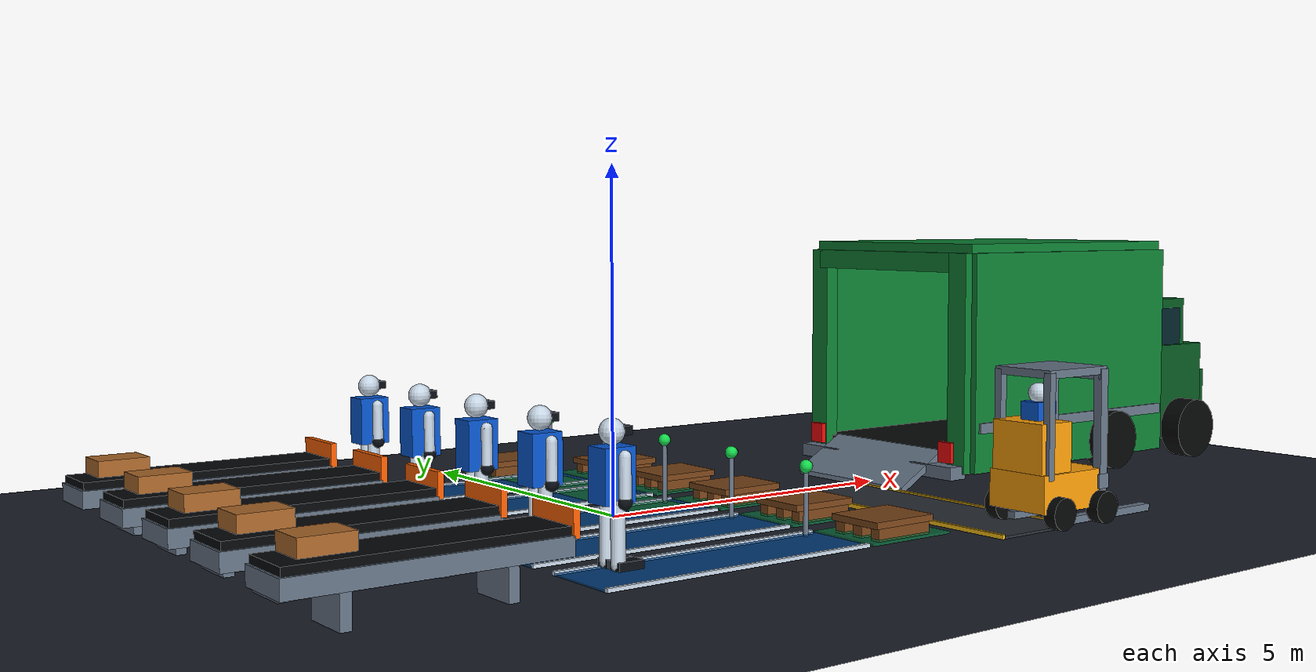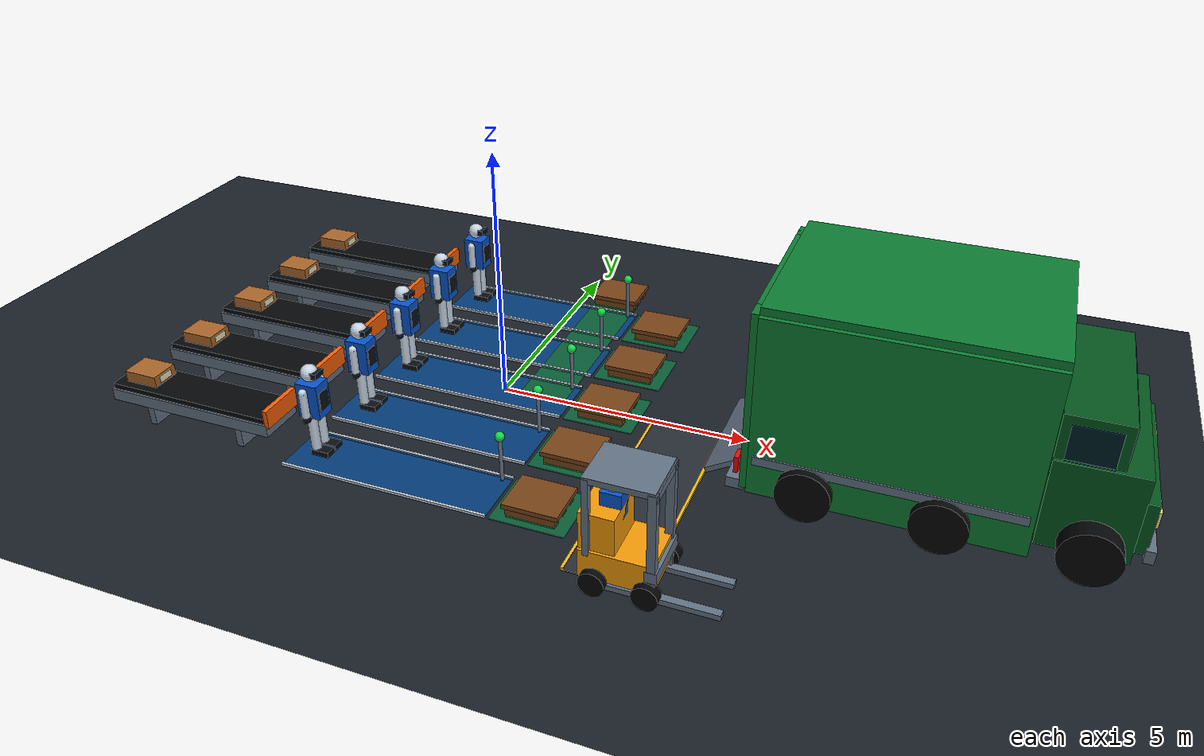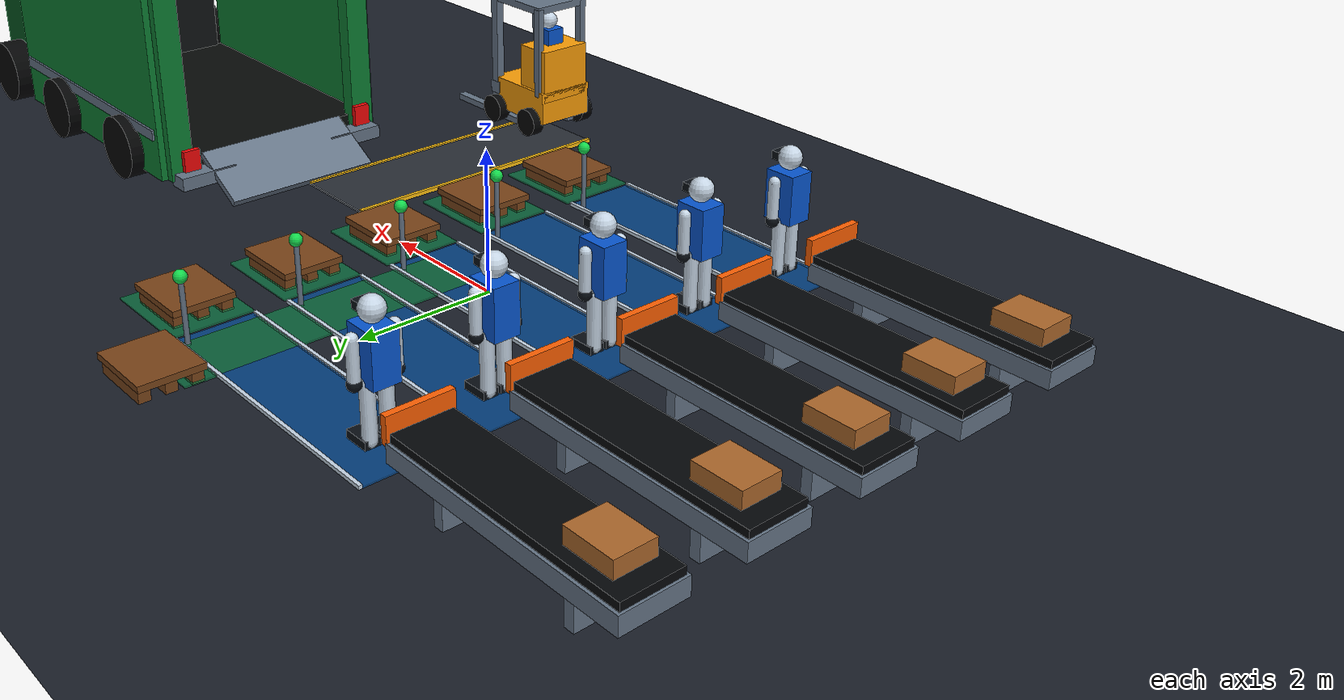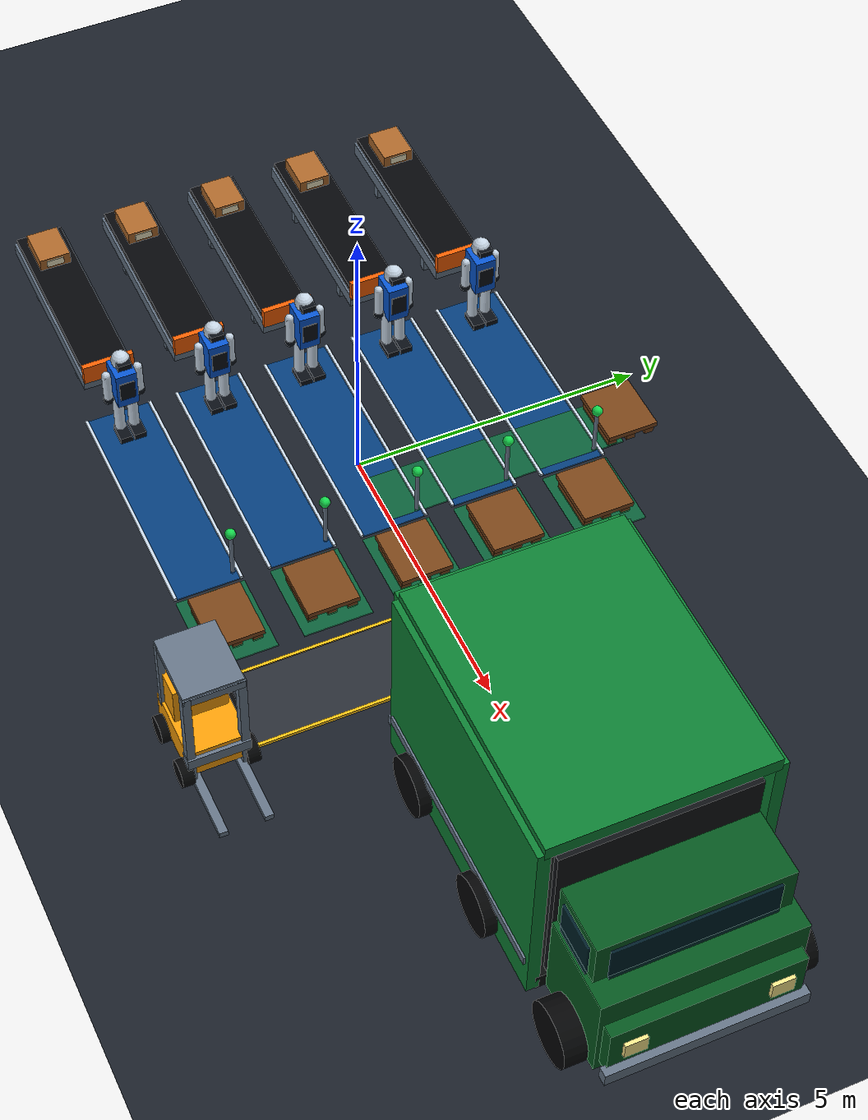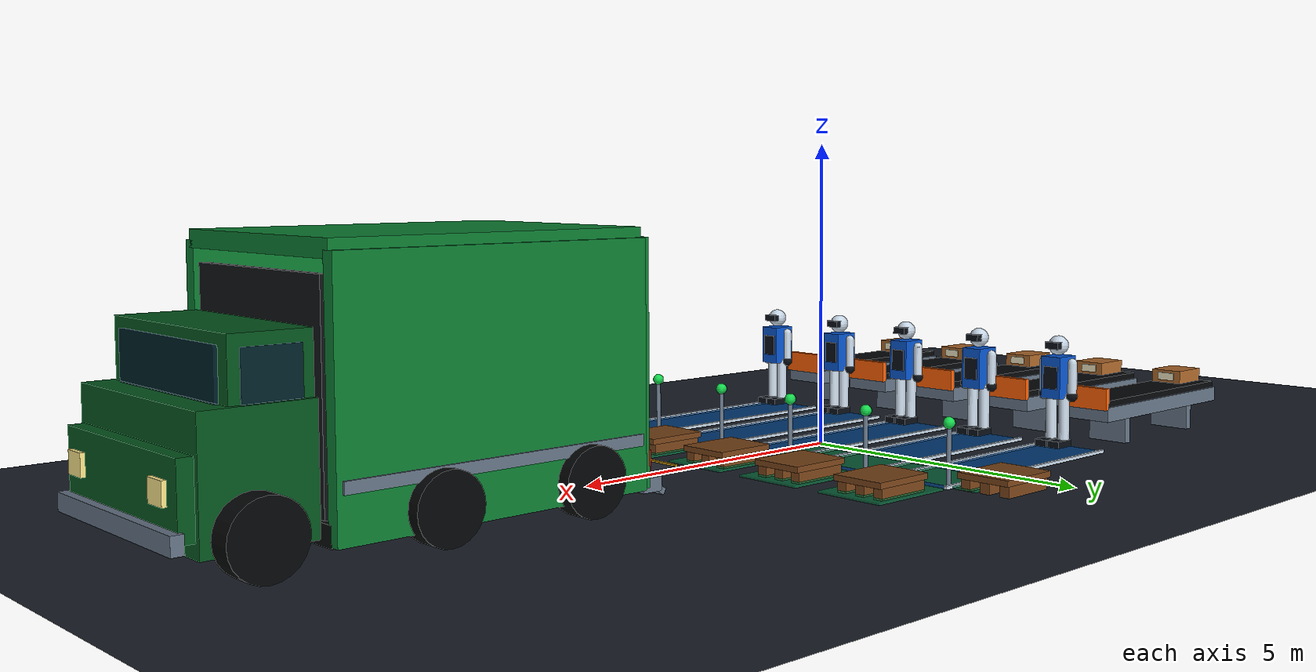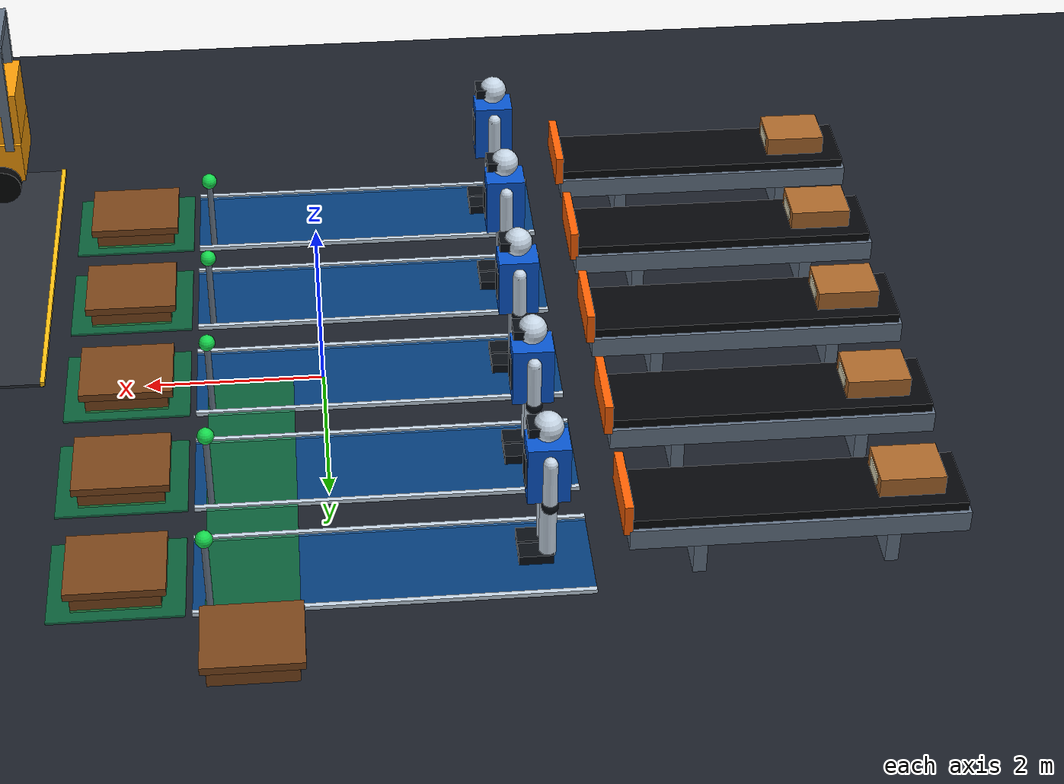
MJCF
<mujoco model="warehouse_palletizing_forklift_v4">
  <compiler angle="degree" autolimits="true"/>
  <option timestep="0.01" gravity="0 0 -9.81"/>
  <statistic center="1.0 0 1.2" extent="12.5"/>
  <visual>
    <global azimuth="128" elevation="-26"/>
    <headlight ambient="0.42 0.42 0.46" diffuse="0.86 0.86 0.86" specular="0.24 0.24 0.24"/>
    <rgba haze="0.08 0.10 0.14 1"/>
  </visual>
  <default>
    <geom contype="0" conaffinity="0"/>
    <joint damping="3" armature="0.02"/>
    <default class="limb">
      <geom type="capsule" size="0.075" mass="0.65" material="robot_shell"/>
      <joint type="hinge" axis="0 1 0" range="-75 75"/>
    </default>
  </default>
  <asset>
    <texture name="floor_tex" type="2d" builtin="checker" rgb1="0.08 0.10 0.13" rgb2="0.13 0.15 0.19" width="256" height="256"/>
    <material name="floor_mat" texture="floor_tex" texrepeat="14 10" reflectance="0.08"/>
    <material name="robot_shell" rgba="0.78 0.84 0.90 1" specular="0.50" shininess="0.42"/>
    <material name="robot_blue" rgba="0.03 0.34 0.82 1" specular="0.45" shininess="0.35"/>
    <material name="robot_dark" rgba="0.035 0.055 0.08 1"/>
    <material name="belt" rgba="0.018 0.025 0.035 1"/>
    <material name="steel" rgba="0.40 0.46 0.53 1" specular="0.48" shininess="0.42"/>
    <material name="safety_orange" rgba="1.00 0.38 0.01 1"/>
    <material name="safety_yellow" rgba="1.00 0.76 0.07 1"/>
    <material name="lane_blue" rgba="0.02 0.34 0.68 0.68"/>
    <material name="pallet" rgba="0.48 0.27 0.10 1"/>
    <material name="truck_green" rgba="0.05 0.50 0.20 1" specular="0.40" shininess="0.30"/>
    <material name="truck_cab_green" rgba="0.02 0.34 0.12 1" specular="0.48" shininess="0.38"/>
    <material name="truck_dark" rgba="0.025 0.035 0.03 1"/>
    <material name="truck_interior" rgba="0.055 0.065 0.075 1"/>
    <material name="aisle_dark" rgba="0.16 0.18 0.21 1"/>
    <material name="tire" rgba="0.015 0.018 0.022 1"/>
    <material name="forklift_yellow" rgba="0.98 0.62 0.03 1" specular="0.38" shininess="0.25"/>
    <material name="window" rgba="0.05 0.15 0.22 0.86"/>
    <material name="zone_green" rgba="0.05 0.55 0.30 0.65"/>
  </asset>
  <worldbody>
    <light name="key" pos="1 -5 11" dir="-0.1 0.2 -1" diffuse="0.90 0.90 0.90"/>
    <light name="truck_fill" pos="8 2 8" dir="-0.2 -0.1 -1" diffuse="0.48 0.58 0.50"/>
    <geom name="floor" type="plane" size="13 7.5 0.1" material="floor_mat" contype="1" conaffinity="1"/>

    <!-- Green truck with an open rear, cargo bay, cab and visible wheels. -->
    <geom name="truck_floor" type="box" pos="7.75 0 0.42" size="2.30 1.72 0.14" material="truck_dark"/>
    <geom name="truck_left_wall" type="box" pos="7.75 -1.76 2.00" size="2.30 0.10 1.70" material="truck_green"/>
    <geom name="truck_right_wall" type="box" pos="7.75 1.76 2.00" size="2.30 0.10 1.70" material="truck_green"/>
    <geom name="truck_roof" type="box" pos="7.75 0 3.72" size="2.30 1.76 0.12" material="truck_green"/>
    <geom name="truck_interior_front" type="box" pos="9.98 0 2.00" size="0.05 1.54 1.42" material="truck_interior"/>
    <geom name="truck_side_rail_left" type="box" pos="7.75 -1.87 1.00" size="2.22 0.025 0.08" material="steel"/>
    <geom name="truck_side_rail_right" type="box" pos="7.75 1.87 1.00" size="2.22 0.025 0.08" material="steel"/>
    <geom name="truck_rear_left" type="box" pos="5.43 -1.58 2.00" size="0.12 0.18 1.70" material="truck_green"/>
    <geom name="truck_rear_right" type="box" pos="5.43 1.58 2.00" size="0.12 0.18 1.70" material="truck_green"/>
    <geom name="truck_rear_header" type="box" pos="5.43 0 3.55" size="0.12 1.58 0.15" material="truck_green"/>
    <geom name="truck_bumper_left" type="box" pos="5.22 -1.28 0.32" size="0.16 0.44 0.10" material="steel"/>
    <geom name="truck_bumper_right" type="box" pos="5.22 1.28 0.32" size="0.16 0.44 0.10" material="steel"/>
    <geom name="truck_loading_ramp" type="box" pos="4.99 0 0.305" size="0.51 1.20 0.05" euler="0 -30 0" material="steel"/>
    <geom name="truck_taillight_left" type="box" pos="5.20 -1.48 0.62" size="0.04 0.13 0.16" rgba="0.95 0.03 0.03 1"/>
    <geom name="truck_taillight_right" type="box" pos="5.20 1.48 0.62" size="0.04 0.13 0.16" rgba="0.95 0.03 0.03 1"/>
    <geom name="truck_cab_lower" type="box" pos="10.82 0 1.20" size="0.72 1.58 0.82" material="truck_cab_green"/>
    <geom name="truck_cab_upper" type="box" pos="10.62 0 2.22" size="0.52 1.50 0.60" material="truck_cab_green"/>
    <geom name="truck_hood" type="box" pos="11.42 0 1.05" size="0.32 1.50 0.48" material="truck_cab_green"/>
    <geom name="truck_windshield" type="box" pos="11.15 0 2.28" size="0.035 1.28 0.40" material="window"/>
    <geom name="truck_side_window_left" type="box" pos="10.62 -1.515 2.28" size="0.37 0.025 0.38" material="window"/>
    <geom name="truck_side_window_right" type="box" pos="10.62 1.515 2.28" size="0.37 0.025 0.38" material="window"/>
    <geom name="truck_front_bumper" type="box" pos="11.78 0 0.60" size="0.08 1.58 0.12" material="steel"/>
    <geom name="truck_headlight_left" type="box" pos="11.79 -1.12 1.12" size="0.03 0.18 0.15" rgba="1.00 0.92 0.55 1"/>
    <geom name="truck_headlight_right" type="box" pos="11.79 1.12 1.12" size="0.03 0.18 0.15" rgba="1.00 0.92 0.55 1"/>
    <geom type="cylinder" pos="6.45 -1.88 0.58" size="0.48 0.18" euler="90 0 0" material="tire"/>
    <geom type="cylinder" pos="6.45 1.88 0.58" size="0.48 0.18" euler="90 0 0" material="tire"/>
    <geom type="cylinder" pos="8.65 -1.88 0.58" size="0.48 0.18" euler="90 0 0" material="tire"/>
    <geom type="cylinder" pos="8.65 1.88 0.58" size="0.48 0.18" euler="90 0 0" material="tire"/>
    <geom type="cylinder" pos="10.92 -1.78 0.58" size="0.50 0.18" euler="90 0 0" material="tire"/>
    <geom type="cylinder" pos="10.92 1.78 0.58" size="0.50 0.18" euler="90 0 0" material="tire"/>

    <!-- Forklift service aisle and pallet-replenishment cross aisle. -->
    <geom name="forklift_aisle" type="box" pos="3.85 -2.30 0.018" size="0.70 2.20 0.018" material="aisle_dark"/>
    <geom name="forklift_aisle_left_edge" type="box" pos="3.17 -2.30 0.03" size="0.025 2.20 0.03" material="safety_yellow"/>
    <geom name="forklift_aisle_right_edge" type="box" pos="4.53 -2.30 0.03" size="0.025 2.20 0.03" material="safety_yellow"/>
    <geom name="pallet_cross_aisle" type="box" pos="0.82 2.10 0.014" size="0.48 2.10 0.014" material="zone_green"/>

    <!-- Lane 1: conveyor, protected travel path, pallet station and status tower. -->
    <geom name="belt_frame_01" type="box" pos="-4.75 -3.20 0.56" size="1.75 0.44 0.12" material="steel"/>
    <geom name="belt_01" type="box" pos="-4.75 -3.20 0.73" size="1.72 0.40 0.055" material="belt"/>
    <geom name="belt_stop_01" type="box" pos="-2.98 -3.20 0.82" size="0.045 0.44 0.18" material="safety_orange"/>
    <geom type="box" pos="-5.75 -3.20 0.28" size="0.07 0.35 0.28" material="steel"/>
    <geom type="box" pos="-3.75 -3.20 0.28" size="0.07 0.35 0.28" material="steel"/>
    <geom name="lane_zone_01" type="box" pos="-0.62 -3.20 0.012" size="2.05 0.54 0.012" material="lane_blue"/>
    <geom name="lane_left_01" type="box" pos="-0.62 -3.76 0.025" size="2.05 0.025 0.025" material="robot_shell"/>
    <geom name="lane_right_01" type="box" pos="-0.62 -2.64 0.025" size="2.05 0.025 0.025" material="robot_shell"/>
    <geom name="pallet_zone_01" type="box" pos="2.20 -3.20 0.014" size="0.70 0.58 0.014" material="zone_green"/>
    <geom type="cylinder" pos="1.25 -2.72 0.45" size="0.035 0.45" material="steel"/>
    <geom name="status_01" type="sphere" pos="1.25 -2.72 0.94" size="0.09" rgba="0.08 0.85 0.30 1"/>

    <!-- Lane 2: conveyor, protected travel path, pallet station and status tower. -->
    <geom name="belt_frame_02" type="box" pos="-4.75 -1.60 0.56" size="1.75 0.44 0.12" material="steel"/>
    <geom name="belt_02" type="box" pos="-4.75 -1.60 0.73" size="1.72 0.40 0.055" material="belt"/>
    <geom name="belt_stop_02" type="box" pos="-2.98 -1.60 0.82" size="0.045 0.44 0.18" material="safety_orange"/>
    <geom type="box" pos="-5.75 -1.60 0.28" size="0.07 0.35 0.28" material="steel"/>
    <geom type="box" pos="-3.75 -1.60 0.28" size="0.07 0.35 0.28" material="steel"/>
    <geom name="lane_zone_02" type="box" pos="-0.62 -1.60 0.012" size="2.05 0.54 0.012" material="lane_blue"/>
    <geom name="lane_left_02" type="box" pos="-0.62 -2.16 0.025" size="2.05 0.025 0.025" material="robot_shell"/>
    <geom name="lane_right_02" type="box" pos="-0.62 -1.04 0.025" size="2.05 0.025 0.025" material="robot_shell"/>
    <geom name="pallet_zone_02" type="box" pos="2.20 -1.60 0.014" size="0.70 0.58 0.014" material="zone_green"/>
    <geom type="cylinder" pos="1.25 -1.12 0.45" size="0.035 0.45" material="steel"/>
    <geom name="status_02" type="sphere" pos="1.25 -1.12 0.94" size="0.09" rgba="0.08 0.85 0.30 1"/>

    <!-- Lane 3: conveyor, protected travel path, pallet station and status tower. -->
    <geom name="belt_frame_03" type="box" pos="-4.75 0.00 0.56" size="1.75 0.44 0.12" material="steel"/>
    <geom name="belt_03" type="box" pos="-4.75 0.00 0.73" size="1.72 0.40 0.055" material="belt"/>
    <geom name="belt_stop_03" type="box" pos="-2.98 0.00 0.82" size="0.045 0.44 0.18" material="safety_orange"/>
    <geom type="box" pos="-5.75 0.00 0.28" size="0.07 0.35 0.28" material="steel"/>
    <geom type="box" pos="-3.75 0.00 0.28" size="0.07 0.35 0.28" material="steel"/>
    <geom name="lane_zone_03" type="box" pos="-0.62 0.00 0.012" size="2.05 0.54 0.012" material="lane_blue"/>
    <geom name="lane_left_03" type="box" pos="-0.62 -0.56 0.025" size="2.05 0.025 0.025" material="robot_shell"/>
    <geom name="lane_right_03" type="box" pos="-0.62 0.56 0.025" size="2.05 0.025 0.025" material="robot_shell"/>
    <geom name="pallet_zone_03" type="box" pos="2.20 0.00 0.014" size="0.70 0.58 0.014" material="zone_green"/>
    <geom type="cylinder" pos="1.25 0.48 0.45" size="0.035 0.45" material="steel"/>
    <geom name="status_03" type="sphere" pos="1.25 0.48 0.94" size="0.09" rgba="0.08 0.85 0.30 1"/>

    <!-- Lane 4: conveyor, protected travel path, pallet station and status tower. -->
    <geom name="belt_frame_04" type="box" pos="-4.75 1.60 0.56" size="1.75 0.44 0.12" material="steel"/>
    <geom name="belt_04" type="box" pos="-4.75 1.60 0.73" size="1.72 0.40 0.055" material="belt"/>
    <geom name="belt_stop_04" type="box" pos="-2.98 1.60 0.82" size="0.045 0.44 0.18" material="safety_orange"/>
    <geom type="box" pos="-5.75 1.60 0.28" size="0.07 0.35 0.28" material="steel"/>
    <geom type="box" pos="-3.75 1.60 0.28" size="0.07 0.35 0.28" material="steel"/>
    <geom name="lane_zone_04" type="box" pos="-0.62 1.60 0.012" size="2.05 0.54 0.012" material="lane_blue"/>
    <geom name="lane_left_04" type="box" pos="-0.62 1.04 0.025" size="2.05 0.025 0.025" material="robot_shell"/>
    <geom name="lane_right_04" type="box" pos="-0.62 2.16 0.025" size="2.05 0.025 0.025" material="robot_shell"/>
    <geom name="pallet_zone_04" type="box" pos="2.20 1.60 0.014" size="0.70 0.58 0.014" material="zone_green"/>
    <geom type="cylinder" pos="1.25 2.08 0.45" size="0.035 0.45" material="steel"/>
    <geom name="status_04" type="sphere" pos="1.25 2.08 0.94" size="0.09" rgba="0.08 0.85 0.30 1"/>

    <!-- Lane 5: conveyor, protected travel path, pallet station and status tower. -->
    <geom name="belt_frame_05" type="box" pos="-4.75 3.20 0.56" size="1.75 0.44 0.12" material="steel"/>
    <geom name="belt_05" type="box" pos="-4.75 3.20 0.73" size="1.72 0.40 0.055" material="belt"/>
    <geom name="belt_stop_05" type="box" pos="-2.98 3.20 0.82" size="0.045 0.44 0.18" material="safety_orange"/>
    <geom type="box" pos="-5.75 3.20 0.28" size="0.07 0.35 0.28" material="steel"/>
    <geom type="box" pos="-3.75 3.20 0.28" size="0.07 0.35 0.28" material="steel"/>
    <geom name="lane_zone_05" type="box" pos="-0.62 3.20 0.012" size="2.05 0.54 0.012" material="lane_blue"/>
    <geom name="lane_left_05" type="box" pos="-0.62 2.64 0.025" size="2.05 0.025 0.025" material="robot_shell"/>
    <geom name="lane_right_05" type="box" pos="-0.62 3.76 0.025" size="2.05 0.025 0.025" material="robot_shell"/>
    <geom name="pallet_zone_05" type="box" pos="2.20 3.20 0.014" size="0.70 0.58 0.014" material="zone_green"/>
    <geom type="cylinder" pos="1.25 3.68 0.45" size="0.035 0.45" material="steel"/>
    <geom name="status_05" type="sphere" pos="1.25 3.68 0.94" size="0.09" rgba="0.08 0.85 0.30 1"/>

    <!-- Five articulated worker robots. -->
    <body name="humanoid_01" mocap="true" pos="-2.20 -3.20 0">
      <geom type="box" pos="0 0 1.24" size="0.22 0.18 0.34" material="robot_blue"/>
      <geom type="box" pos="0.20 0 1.24" size="0.035 0.13 0.18" material="robot_dark"/>
      <geom type="sphere" pos="0 0 1.75" size="0.16" material="robot_shell"/>
      <geom type="box" pos="0.13 0 1.76" size="0.08 0.12 0.055" material="robot_dark"/>
      <body pos="0 -0.27 1.48" childclass="limb"><joint name="h01_l_shoulder"/><geom fromto="0 0 0 0 0 -0.52"/><geom type="sphere" pos="0 0 -0.54" size="0.09" material="robot_dark"/></body>
      <body pos="0 0.27 1.48" childclass="limb"><joint name="h01_r_shoulder"/><geom fromto="0 0 0 0 0 -0.52"/><geom type="sphere" pos="0 0 -0.54" size="0.09" material="robot_dark"/></body>
      <body pos="0 -0.12 0.91" childclass="limb"><joint name="h01_l_hip"/><geom size="0.09" fromto="0 0 0 0 0 -0.72"/><geom type="box" pos="0.12 0 -0.74" size="0.18 0.105 0.055" material="robot_dark"/></body>
      <body pos="0 0.12 0.91" childclass="limb"><joint name="h01_r_hip"/><geom size="0.09" fromto="0 0 0 0 0 -0.72"/><geom type="box" pos="0.12 0 -0.74" size="0.18 0.105 0.055" material="robot_dark"/></body>
    </body>
    <body name="humanoid_02" mocap="true" pos="-2.20 -1.60 0">
      <geom type="box" pos="0 0 1.24" size="0.22 0.18 0.34" material="robot_blue"/>
      <geom type="box" pos="0.20 0 1.24" size="0.035 0.13 0.18" material="robot_dark"/>
      <geom type="sphere" pos="0 0 1.75" size="0.16" material="robot_shell"/>
      <geom type="box" pos="0.13 0 1.76" size="0.08 0.12 0.055" material="robot_dark"/>
      <body pos="0 -0.27 1.48" childclass="limb"><joint name="h02_l_shoulder"/><geom fromto="0 0 0 0 0 -0.52"/><geom type="sphere" pos="0 0 -0.54" size="0.09" material="robot_dark"/></body>
      <body pos="0 0.27 1.48" childclass="limb"><joint name="h02_r_shoulder"/><geom fromto="0 0 0 0 0 -0.52"/><geom type="sphere" pos="0 0 -0.54" size="0.09" material="robot_dark"/></body>
      <body pos="0 -0.12 0.91" childclass="limb"><joint name="h02_l_hip"/><geom size="0.09" fromto="0 0 0 0 0 -0.72"/><geom type="box" pos="0.12 0 -0.74" size="0.18 0.105 0.055" material="robot_dark"/></body>
      <body pos="0 0.12 0.91" childclass="limb"><joint name="h02_r_hip"/><geom size="0.09" fromto="0 0 0 0 0 -0.72"/><geom type="box" pos="0.12 0 -0.74" size="0.18 0.105 0.055" material="robot_dark"/></body>
    </body>
    <body name="humanoid_03" mocap="true" pos="-2.20 0.00 0">
      <geom type="box" pos="0 0 1.24" size="0.22 0.18 0.34" material="robot_blue"/>
      <geom type="box" pos="0.20 0 1.24" size="0.035 0.13 0.18" material="robot_dark"/>
      <geom type="sphere" pos="0 0 1.75" size="0.16" material="robot_shell"/>
      <geom type="box" pos="0.13 0 1.76" size="0.08 0.12 0.055" material="robot_dark"/>
      <body pos="0 -0.27 1.48" childclass="limb"><joint name="h03_l_shoulder"/><geom fromto="0 0 0 0 0 -0.52"/><geom type="sphere" pos="0 0 -0.54" size="0.09" material="robot_dark"/></body>
      <body pos="0 0.27 1.48" childclass="limb"><joint name="h03_r_shoulder"/><geom fromto="0 0 0 0 0 -0.52"/><geom type="sphere" pos="0 0 -0.54" size="0.09" material="robot_dark"/></body>
      <body pos="0 -0.12 0.91" childclass="limb"><joint name="h03_l_hip"/><geom size="0.09" fromto="0 0 0 0 0 -0.72"/><geom type="box" pos="0.12 0 -0.74" size="0.18 0.105 0.055" material="robot_dark"/></body>
      <body pos="0 0.12 0.91" childclass="limb"><joint name="h03_r_hip"/><geom size="0.09" fromto="0 0 0 0 0 -0.72"/><geom type="box" pos="0.12 0 -0.74" size="0.18 0.105 0.055" material="robot_dark"/></body>
    </body>
    <body name="humanoid_04" mocap="true" pos="-2.20 1.60 0">
      <geom type="box" pos="0 0 1.24" size="0.22 0.18 0.34" material="robot_blue"/>
      <geom type="box" pos="0.20 0 1.24" size="0.035 0.13 0.18" material="robot_dark"/>
      <geom type="sphere" pos="0 0 1.75" size="0.16" material="robot_shell"/>
      <geom type="box" pos="0.13 0 1.76" size="0.08 0.12 0.055" material="robot_dark"/>
      <body pos="0 -0.27 1.48" childclass="limb"><joint name="h04_l_shoulder"/><geom fromto="0 0 0 0 0 -0.52"/><geom type="sphere" pos="0 0 -0.54" size="0.09" material="robot_dark"/></body>
      <body pos="0 0.27 1.48" childclass="limb"><joint name="h04_r_shoulder"/><geom fromto="0 0 0 0 0 -0.52"/><geom type="sphere" pos="0 0 -0.54" size="0.09" material="robot_dark"/></body>
      <body pos="0 -0.12 0.91" childclass="limb"><joint name="h04_l_hip"/><geom size="0.09" fromto="0 0 0 0 0 -0.72"/><geom type="box" pos="0.12 0 -0.74" size="0.18 0.105 0.055" material="robot_dark"/></body>
      <body pos="0 0.12 0.91" childclass="limb"><joint name="h04_r_hip"/><geom size="0.09" fromto="0 0 0 0 0 -0.72"/><geom type="box" pos="0.12 0 -0.74" size="0.18 0.105 0.055" material="robot_dark"/></body>
    </body>
    <body name="humanoid_05" mocap="true" pos="-2.20 3.20 0">
      <geom type="box" pos="0 0 1.24" size="0.22 0.18 0.34" material="robot_blue"/>
      <geom type="box" pos="0.20 0 1.24" size="0.035 0.13 0.18" material="robot_dark"/>
      <geom type="sphere" pos="0 0 1.75" size="0.16" material="robot_shell"/>
      <geom type="box" pos="0.13 0 1.76" size="0.08 0.12 0.055" material="robot_dark"/>
      <body pos="0 -0.27 1.48" childclass="limb"><joint name="h05_l_shoulder"/><geom fromto="0 0 0 0 0 -0.52"/><geom type="sphere" pos="0 0 -0.54" size="0.09" material="robot_dark"/></body>
      <body pos="0 0.27 1.48" childclass="limb"><joint name="h05_r_shoulder"/><geom fromto="0 0 0 0 0 -0.52"/><geom type="sphere" pos="0 0 -0.54" size="0.09" material="robot_dark"/></body>
      <body pos="0 -0.12 0.91" childclass="limb"><joint name="h05_l_hip"/><geom size="0.09" fromto="0 0 0 0 0 -0.72"/><geom type="box" pos="0.12 0 -0.74" size="0.18 0.105 0.055" material="robot_dark"/></body>
      <body pos="0 0.12 0.91" childclass="limb"><joint name="h05_r_hip"/><geom size="0.09" fromto="0 0 0 0 0 -0.72"/><geom type="box" pos="0.12 0 -0.74" size="0.18 0.105 0.055" material="robot_dark"/></body>
    </body>

    <!-- Active cartons arriving on the five conveyor belts. -->
    <body name="carton_01" mocap="true" pos="-5.90 -3.20 0.92">
      <geom name="active_box_01" type="box" size="0.34 0.27 0.11" rgba="0.68 0.41 0.17 1"/>
      <geom name="active_label_01" type="box" pos="0.345 0 0" size="0.008 0.15 0.065" rgba="0.94 0.91 0.77 1"/>
    </body>
    <body name="carton_02" mocap="true" pos="-5.90 -1.60 0.92">
      <geom name="active_box_02" type="box" size="0.34 0.27 0.11" rgba="0.68 0.41 0.17 1"/>
      <geom name="active_label_02" type="box" pos="0.345 0 0" size="0.008 0.15 0.065" rgba="0.94 0.91 0.77 1"/>
    </body>
    <body name="carton_03" mocap="true" pos="-5.90 0.00 0.92">
      <geom name="active_box_03" type="box" size="0.34 0.27 0.11" rgba="0.68 0.41 0.17 1"/>
      <geom name="active_label_03" type="box" pos="0.345 0 0" size="0.008 0.15 0.065" rgba="0.94 0.91 0.77 1"/>
    </body>
    <body name="carton_04" mocap="true" pos="-5.90 1.60 0.92">
      <geom name="active_box_04" type="box" size="0.34 0.27 0.11" rgba="0.68 0.41 0.17 1"/>
      <geom name="active_label_04" type="box" pos="0.345 0 0" size="0.008 0.15 0.065" rgba="0.94 0.91 0.77 1"/>
    </body>
    <body name="carton_05" mocap="true" pos="-5.90 3.20 0.92">
      <geom name="active_box_05" type="box" size="0.34 0.27 0.11" rgba="0.68 0.41 0.17 1"/>
      <geom name="active_label_05" type="box" pos="0.345 0 0" size="0.008 0.15 0.065" rgba="0.94 0.91 0.77 1"/>
    </body>

    <!-- Five floor pallets. The center pallet is serviced by the forklift. -->
    <body name="pallet_01" mocap="true" pos="2.20 -3.20 0">
      <geom type="box" pos="0 -0.34 0.10" size="0.46 0.08 0.10" material="pallet"/>
      <geom type="box" pos="0 0 0.10" size="0.46 0.08 0.10" material="pallet"/>
      <geom type="box" pos="0 0.34 0.10" size="0.46 0.08 0.10" material="pallet"/>
      <geom type="box" pos="0 0 0.22" size="0.52 0.44 0.045" material="pallet"/>
    </body>
    <body name="stack_lane_01" mocap="true" pos="2.20 -3.20 0">
      <geom name="stack_01_01" type="box" pos="-0.03 0 0.39" size="0.34 0.27 0.11" rgba="0.68 0.41 0.17 0"/>
      <geom name="stack_01_02" type="box" pos="0.03 0 0.62" size="0.34 0.27 0.11" rgba="0.68 0.41 0.17 0"/>
      <geom name="stack_01_03" type="box" pos="-0.03 0 0.85" size="0.34 0.27 0.11" rgba="0.68 0.41 0.17 0"/>
      <geom name="stack_01_04" type="box" pos="0.03 0 1.08" size="0.34 0.27 0.11" rgba="0.68 0.41 0.17 0"/>
      <geom name="stack_01_05" type="box" pos="-0.03 0 1.31" size="0.34 0.27 0.11" rgba="0.68 0.41 0.17 0"/>
      <geom name="stack_01_06" type="box" pos="0.03 0 1.54" size="0.34 0.27 0.11" rgba="0.68 0.41 0.17 0"/>
      <geom name="stack_01_07" type="box" pos="-0.03 0 1.77" size="0.34 0.27 0.11" rgba="0.68 0.41 0.17 0"/>
    </body>
    <body name="pallet_02" mocap="true" pos="2.20 -1.60 0">
      <geom type="box" pos="0 -0.34 0.10" size="0.46 0.08 0.10" material="pallet"/>
      <geom type="box" pos="0 0 0.10" size="0.46 0.08 0.10" material="pallet"/>
      <geom type="box" pos="0 0.34 0.10" size="0.46 0.08 0.10" material="pallet"/>
      <geom type="box" pos="0 0 0.22" size="0.52 0.44 0.045" material="pallet"/>
    </body>
    <body name="stack_lane_02" mocap="true" pos="2.20 -1.60 0">
      <geom name="stack_02_01" type="box" pos="-0.03 0 0.39" size="0.34 0.27 0.11" rgba="0.68 0.41 0.17 0"/>
      <geom name="stack_02_02" type="box" pos="0.03 0 0.62" size="0.34 0.27 0.11" rgba="0.68 0.41 0.17 0"/>
      <geom name="stack_02_03" type="box" pos="-0.03 0 0.85" size="0.34 0.27 0.11" rgba="0.68 0.41 0.17 0"/>
      <geom name="stack_02_04" type="box" pos="0.03 0 1.08" size="0.34 0.27 0.11" rgba="0.68 0.41 0.17 0"/>
      <geom name="stack_02_05" type="box" pos="-0.03 0 1.31" size="0.34 0.27 0.11" rgba="0.68 0.41 0.17 0"/>
      <geom name="stack_02_06" type="box" pos="0.03 0 1.54" size="0.34 0.27 0.11" rgba="0.68 0.41 0.17 0"/>
      <geom name="stack_02_07" type="box" pos="-0.03 0 1.77" size="0.34 0.27 0.11" rgba="0.68 0.41 0.17 0"/>
    </body>
    <body name="pallet_03" mocap="true" pos="2.20 0.00 0">
      <geom type="box" pos="0 -0.34 0.10" size="0.46 0.08 0.10" material="pallet"/>
      <geom type="box" pos="0 0 0.10" size="0.46 0.08 0.10" material="pallet"/>
      <geom type="box" pos="0 0.34 0.10" size="0.46 0.08 0.10" material="pallet"/>
      <geom type="box" pos="0 0 0.22" size="0.52 0.44 0.045" material="pallet"/>
    </body>
    <body name="stack_lane_03" mocap="true" pos="2.20 0.00 0">
      <geom name="stack_03_01" type="box" pos="-0.03 0 0.39" size="0.34 0.27 0.11" rgba="0.68 0.41 0.17 0"/>
      <geom name="stack_03_02" type="box" pos="0.03 0 0.62" size="0.34 0.27 0.11" rgba="0.68 0.41 0.17 0"/>
      <geom name="stack_03_03" type="box" pos="-0.03 0 0.85" size="0.34 0.27 0.11" rgba="0.68 0.41 0.17 0"/>
      <geom name="stack_03_04" type="box" pos="0.03 0 1.08" size="0.34 0.27 0.11" rgba="0.68 0.41 0.17 0"/>
      <geom name="stack_03_05" type="box" pos="-0.03 0 1.31" size="0.34 0.27 0.11" rgba="0.68 0.41 0.17 0"/>
      <geom name="stack_03_06" type="box" pos="0.03 0 1.54" size="0.34 0.27 0.11" rgba="0.68 0.41 0.17 0"/>
      <geom name="stack_03_07" type="box" pos="-0.03 0 1.77" size="0.34 0.27 0.11" rgba="0.68 0.41 0.17 0"/>
    </body>
    <body name="pallet_04" mocap="true" pos="2.20 1.60 0">
      <geom type="box" pos="0 -0.34 0.10" size="0.46 0.08 0.10" material="pallet"/>
      <geom type="box" pos="0 0 0.10" size="0.46 0.08 0.10" material="pallet"/>
      <geom type="box" pos="0 0.34 0.10" size="0.46 0.08 0.10" material="pallet"/>
      <geom type="box" pos="0 0 0.22" size="0.52 0.44 0.045" material="pallet"/>
    </body>
    <body name="stack_lane_04" mocap="true" pos="2.20 1.60 0">
      <geom name="stack_04_01" type="box" pos="-0.03 0 0.39" size="0.34 0.27 0.11" rgba="0.68 0.41 0.17 0"/>
      <geom name="stack_04_02" type="box" pos="0.03 0 0.62" size="0.34 0.27 0.11" rgba="0.68 0.41 0.17 0"/>
      <geom name="stack_04_03" type="box" pos="-0.03 0 0.85" size="0.34 0.27 0.11" rgba="0.68 0.41 0.17 0"/>
      <geom name="stack_04_04" type="box" pos="0.03 0 1.08" size="0.34 0.27 0.11" rgba="0.68 0.41 0.17 0"/>
      <geom name="stack_04_05" type="box" pos="-0.03 0 1.31" size="0.34 0.27 0.11" rgba="0.68 0.41 0.17 0"/>
      <geom name="stack_04_06" type="box" pos="0.03 0 1.54" size="0.34 0.27 0.11" rgba="0.68 0.41 0.17 0"/>
      <geom name="stack_04_07" type="box" pos="-0.03 0 1.77" size="0.34 0.27 0.11" rgba="0.68 0.41 0.17 0"/>
    </body>
    <body name="pallet_05" mocap="true" pos="2.20 3.20 0">
      <geom type="box" pos="0 -0.34 0.10" size="0.46 0.08 0.10" material="pallet"/>
      <geom type="box" pos="0 0 0.10" size="0.46 0.08 0.10" material="pallet"/>
      <geom type="box" pos="0 0.34 0.10" size="0.46 0.08 0.10" material="pallet"/>
      <geom type="box" pos="0 0 0.22" size="0.52 0.44 0.045" material="pallet"/>
    </body>
    <body name="stack_lane_05" mocap="true" pos="2.20 3.20 0">
      <geom name="stack_05_01" type="box" pos="-0.03 0 0.39" size="0.34 0.27 0.11" rgba="0.68 0.41 0.17 0"/>
      <geom name="stack_05_02" type="box" pos="0.03 0 0.62" size="0.34 0.27 0.11" rgba="0.68 0.41 0.17 0"/>
      <geom name="stack_05_03" type="box" pos="-0.03 0 0.85" size="0.34 0.27 0.11" rgba="0.68 0.41 0.17 0"/>
      <geom name="stack_05_04" type="box" pos="0.03 0 1.08" size="0.34 0.27 0.11" rgba="0.68 0.41 0.17 0"/>
      <geom name="stack_05_05" type="box" pos="-0.03 0 1.31" size="0.34 0.27 0.11" rgba="0.68 0.41 0.17 0"/>
      <geom name="stack_05_06" type="box" pos="0.03 0 1.54" size="0.34 0.27 0.11" rgba="0.68 0.41 0.17 0"/>
      <geom name="stack_05_07" type="box" pos="-0.03 0 1.77" size="0.34 0.27 0.11" rgba="0.68 0.41 0.17 0"/>
    </body>

    <!-- Replacement empty pallet stored outside the worker lanes. -->
    <body name="replacement_pallet" mocap="true" pos="0.82 4.35 0">
      <geom type="box" pos="0 -0.34 0.10" size="0.46 0.08 0.10" material="pallet"/>
      <geom type="box" pos="0 0 0.10" size="0.46 0.08 0.10" material="pallet"/>
      <geom type="box" pos="0 0.34 0.10" size="0.46 0.08 0.10" material="pallet"/>
      <geom type="box" pos="0 0 0.22" size="0.52 0.44 0.045" material="pallet"/>
    </body>

    <!-- Robot-operated forklift with open mast, overhead guard, wheels and seated driver. -->
    <body name="forklift_unit" mocap="true" pos="4.30 -4.35 0">
      <geom type="box" pos="-0.10 0 0.58" size="0.62 0.48 0.26" material="forklift_yellow"/>
      <geom type="box" pos="-0.42 0 1.10" size="0.30 0.43 0.42" material="forklift_yellow"/>
      <geom type="box" pos="0.48 -0.43 1.18" size="0.07 0.065 1.02" material="steel"/>
      <geom type="box" pos="0.48 0.43 1.18" size="0.07 0.065 1.02" material="steel"/>
      <geom type="box" pos="0.48 0 2.12" size="0.07 0.48 0.07" material="steel"/>
      <geom type="box" pos="-0.58 -0.43 1.48" size="0.055 0.055 0.72" material="steel"/>
      <geom type="box" pos="-0.58 0.43 1.48" size="0.055 0.055 0.72" material="steel"/>
      <geom type="box" pos="-0.05 0 2.18" size="0.58 0.48 0.055" material="steel"/>
      <geom type="cylinder" pos="-0.45 -0.52 0.32" size="0.22 0.10" euler="90 0 0" material="tire"/>
      <geom type="cylinder" pos="-0.45 0.52 0.32" size="0.22 0.10" euler="90 0 0" material="tire"/>
      <geom type="cylinder" pos="0.42 -0.52 0.32" size="0.22 0.10" euler="90 0 0" material="tire"/>
      <geom type="cylinder" pos="0.42 0.52 0.32" size="0.22 0.10" euler="90 0 0" material="tire"/>
      <geom type="box" pos="-0.30 0 1.52" size="0.18 0.15 0.25" material="robot_blue"/>
      <geom type="sphere" pos="-0.30 0 1.88" size="0.14" material="robot_shell"/>
      <geom type="box" pos="-0.18 0 1.89" size="0.07 0.10 0.045" material="robot_dark"/>
    </body>

    <!-- Independent fork carriage rises with the pallet instead of leaving the forks behind. -->
    <body name="forklift_carriage" mocap="true" pos="4.30 -4.35 0">
      <geom type="box" pos="0.48 0 0.66" size="0.10 0.50 0.10" material="steel"/>
      <geom type="box" pos="0.58 -0.36 0.17" size="1.00 0.07 0.05" material="steel"/>
      <geom type="box" pos="0.58 0.36 0.17" size="1.00 0.07 0.05" material="steel"/>
    </body>
  </worldbody>
</mujoco>
